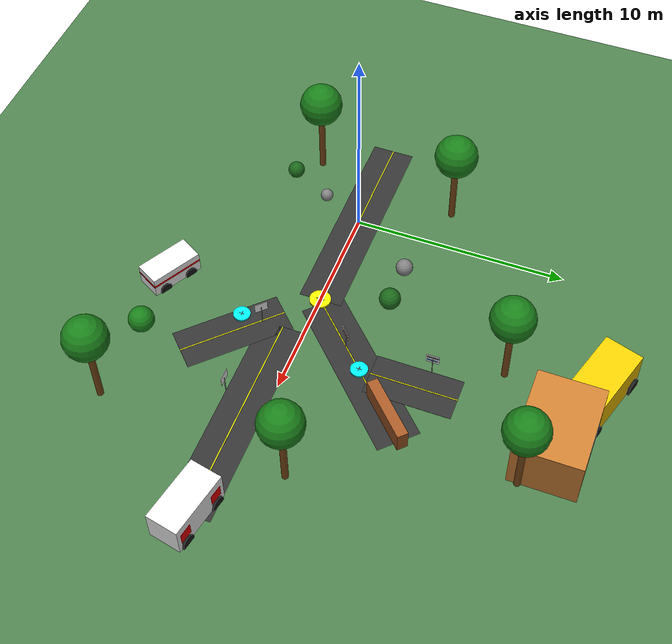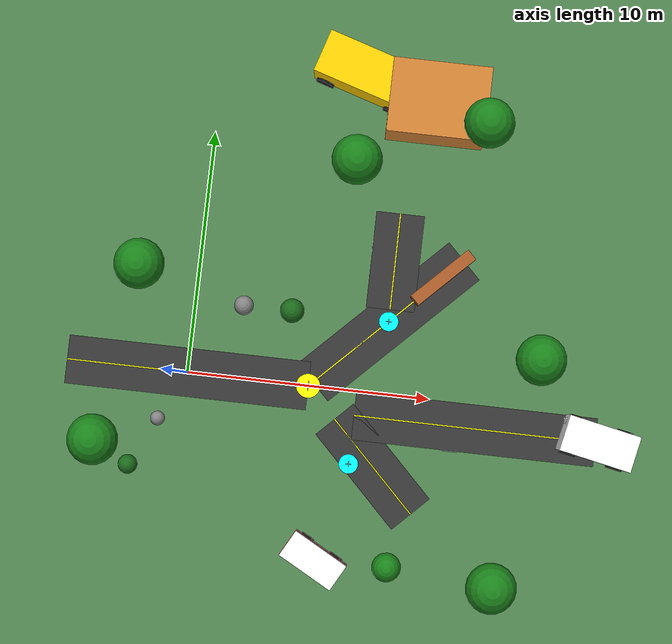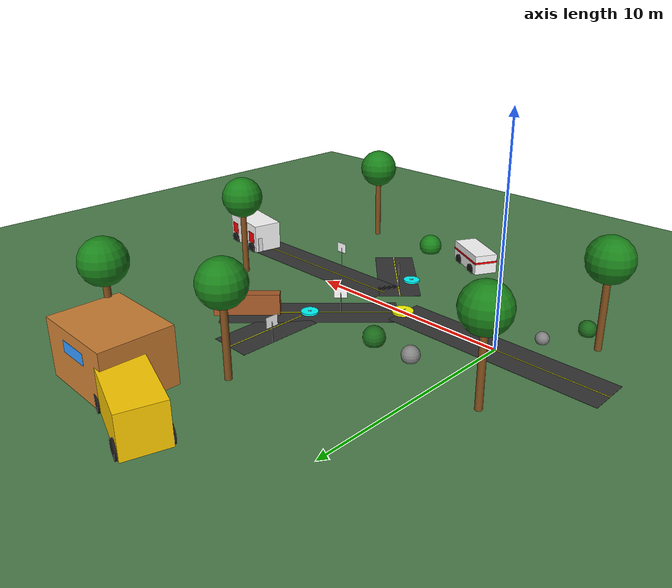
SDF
<sdf version="1.7">
 <world name="ethical_dilemma_world">
  <physics type="ode">
   <max_step_size>0.001</max_step_size>
   <real_time_factor>1</real_time_factor>
   <real_time_update_rate>1000</real_time_update_rate>
  </physics>
  <light type="directional" name="sun">
   <pose>0 0 10 0 0 0</pose>
   <diffuse>0.8 0.8 0.8 1</diffuse>
   <specular>0.2 0.2 0.2 1</specular>
   <direction>-0.5 0.1 -0.9</direction>
  </light>
  <light type="directional" name="ambient">
   <cast_shadows>false</cast_shadows>
   <pose>0 0 10 0 0 0</pose>
   <diffuse>0.3 0.3 0.3 1</diffuse>
   <specular>0.1 0.1 0.1 1</specular>
   <direction>0 0 -1</direction>
  </light>
  <scene><ambient>0.4 0.4 0.4 1</ambient><background>0.7 0.8 0.9 1</background><shadows>true</shadows></scene>
  <model name="ground_plane">
   <static>true</static>
   <link name="link">
    <collision name="collision">
     <geometry><plane><normal>0 0 1</normal><size>100 100</size></plane></geometry>
     <surface><friction><ode><mu>100</mu><mu2>50</mu2></ode></friction></surface>
    </collision>
    <visual name="visual">
     <geometry><plane><normal>0 0 1</normal><size>100 100</size></plane></geometry>
     <material>
      <ambient>0.3 0.5 0.3 1</ambient>
      <diffuse>0.3 0.5 0.3 1</diffuse>
      <specular>0 0 0 1</specular>
      <emissive>0 0 0 1</emissive>
     </material>
    </visual>
   </link>
  </model>
  <model name="main_road">
   <static>true</static>
   <link name="link">
    <collision name="collision"><geometry><box><size>10.0 2.0 0.01</size></box></geometry></collision>
    <visual name="visual">
     <geometry><box><size>10.0 2.0 0.01</size></box></geometry>
     <material>
      <ambient>0.2 0.2 0.2 1</ambient>
      <diffuse>0.2 0.2 0.2 1</diffuse>
      <specular>0.05 0.05 0.05 1</specular>
     </material>
    </visual>
    <visual name="center_line">
     <geometry><box><size>10.0 0.05 0.015</size></box></geometry>
     <material>
      <ambient>1.0 1.0 0.0 1</ambient>
      <diffuse>1.0 1.0 0.0 1</diffuse>
      <specular>0.1 0.1 0.1 1</specular>
     </material>
    </visual>
   </link>
   <pose>0 0 0.005 0 0 0</pose>
  </model>
  <model name="road_fork_1">
   <static>true</static>
   <link name="link">
    <collision name="collision"><geometry><box><size>8.0 2.0 0.01</size></box></geometry></collision>
    <visual name="visual">
     <geometry><box><size>8.0 2.0 0.01</size></box></geometry>
     <material>
      <ambient>0.2 0.2 0.2 1</ambient>
      <diffuse>0.2 0.2 0.2 1</diffuse>
      <specular>0.05 0.05 0.05 1</specular>
     </material>
    </visual>
    <visual name="center_line">
     <pose>0 0 0.005 0 0 0</pose>
     <geometry><box><size>8.0 0.05 0.015</size></box></geometry>
     <material>
      <ambient>1.0 1.0 0.0 1</ambient>
      <diffuse>1.0 1.0 0.0 1</diffuse>
      <specular>0.1 0.1 0.1 1</specular>
     </material>
    </visual>
   </link>
   <pose>8.0 3.0 0.005 0 0 0.785398</pose>
  </model>
  <model name="road_fork_2">
   <static>true</static>
   <link name="link">
    <collision name="collision"><geometry><box><size>5.0 2.0 0.01</size></box></geometry></collision>
    <visual name="visual">
     <geometry><box><size>5.0 2.0 0.01</size></box></geometry>
     <material>
      <ambient>0.2 0.2 0.2 1</ambient>
      <diffuse>0.2 0.2 0.2 1</diffuse>
      <specular>0.05 0.05 0.05 1</specular>
     </material>
    </visual>
    <visual name="center_line">
     <pose>0 0 0.005 0 0 0</pose>
     <geometry><box><size>5.0 0.05 0.015</size></box></geometry>
     <material>
      <ambient>1.0 1.0 0.0 1</ambient>
      <diffuse>1.0 1.0 0.0 1</diffuse>
      <specular>0.1 0.1 0.1 1</specular>
     </material>
    </visual>
   </link>
   <pose>8.0 -3.0 0.005 0 0 -0.785398</pose>
  </model>
  <model name="road_fork_area4">
   <static>true</static>
   <link name="link">
    <collision name="collision"><geometry><box><size>4.0 2.0 0.01</size></box></geometry></collision>
    <visual name="visual">
     <geometry><box><size>4.0 2.0 0.01</size></box></geometry>
     <material>
      <ambient>0.2 0.2 0.2 1</ambient>
      <diffuse>0.2 0.2 0.2 1</diffuse>
      <specular>0.05 0.05 0.05 1</specular>
     </material>
    </visual>
    <visual name="center_line">
     <pose>0 0 0.005 0 0 0</pose>
     <geometry><box><size>4.0 0.05 0.015</size></box></geometry>
     <material>
      <ambient>1.0 1.0 0.0 1</ambient>
      <diffuse>1.0 1.0 0.0 1</diffuse>
      <specular>0.1 0.1 0.1 1</specular>
     </material>
    </visual>
   </link>
   <pose>8.0 5.5 0.005 0 0 1.5708</pose>
  </model>
  <model name="road_fork_area3">
   <static>true</static>
   <link name="link">
    <collision name="collision"><geometry><box><size>10.0 2.0 0.01</size></box></geometry></collision>
    <visual name="visual">
     <geometry><box><size>10.0 2.0 0.01</size></box></geometry>
     <material>
      <ambient>0.2 0.2 0.2 1</ambient>
      <diffuse>0.2 0.2 0.2 1</diffuse>
      <specular>0.05 0.05 0.05 1</specular>
     </material>
    </visual>
    <visual name="center_line">
     <pose>0 0 0.005 0 0 0</pose>
     <geometry><box><size>10.0 0.05 0.015</size></box></geometry>
     <material>
      <ambient>1.0 1.0 0.0 1</ambient>
      <diffuse>1.0 1.0 0.0 1</diffuse>
      <specular>0.1 0.1 0.1 1</specular>
     </material>
    </visual>
   </link>
   <pose>12.0 -1.0 0.005 0 0 0</pose>
  </model>
  <model name="decision_point">
   <static>true</static>
   <link name="link">
    <collision name="collision">
     <geometry><cylinder><radius>0.5</radius><length>0.1</length></cylinder></geometry>
    </collision>
    <visual name="visual">
     <geometry><cylinder><radius>0.5</radius><length>0.1</length></cylinder></geometry>
     <material>
      <ambient>1.0 1.0 0.0 1</ambient>
      <diffuse>1.0 1.0 0.0 1</diffuse>
      <specular>0.1 0.1 0.1 1</specular>
      <emissive>0.1 0.1 0 1</emissive>
     </material>
    </visual>
    <visual name="symbol">
     <pose>0 0 0.051 0 0 0</pose>
     <geometry><box><size>0.4 0.025 0.001</size></box></geometry>
     <material><ambient>0 0 0 1</ambient><diffuse>0 0 0 1</diffuse></material>
    </visual>
    <visual name="symbol_2">
     <pose>0 0 0.051 0 0 1.5708</pose>
     <geometry><box><size>0.4 0.025 0.001</size></box></geometry>
     <material><ambient>0 0 0 1</ambient><diffuse>0 0 0 1</diffuse></material>
    </visual>
   </link>
   <pose>5.0 0 0.05 0 0 0</pose>
  </model>
  <model name="secondary_decision_point_area1">
   <static>true</static>
   <link name="link">
    <collision name="collision">
     <geometry><cylinder><radius>0.4</radius><length>0.1</length></cylinder></geometry>
    </collision>
    <visual name="visual">
     <geometry><cylinder><radius>0.4</radius><length>0.1</length></cylinder></geometry>
     <material>
      <ambient>0.0 1.0 1.0 1</ambient>
      <diffuse>0.0 1.0 1.0 1</diffuse>
      <specular>0.1 0.1 0.1 1</specular>
      <emissive>0.0 0.1 0.1 1</emissive>
     </material>
    </visual>
    <visual name="symbol">
     <pose>0 0 0.051 0 0 0</pose>
     <geometry><box><size>0.25 0.025 0.001</size></box></geometry>
     <material><ambient>0 0 0 1</ambient><diffuse>0 0 0 1</diffuse></material>
    </visual>
    <visual name="symbol_2">
     <pose>0 0 0.051 0 0 1.5708</pose>
     <geometry><box><size>0.25 0.025 0.001</size></box></geometry>
     <material><ambient>0 0 0 1</ambient><diffuse>0 0 0 1</diffuse></material>
    </visual>
   </link>
   <pose>8.0 3.0 0.05 0 0 0</pose>
  </model>
  <model name="secondary_decision_point_area2">
   <static>true</static>
   <link name="link">
    <collision name="collision">
     <geometry><cylinder><radius>0.4</radius><length>0.1</length></cylinder></geometry>
    </collision>
    <visual name="visual">
     <geometry><cylinder><radius>0.4</radius><length>0.1</length></cylinder></geometry>
     <material>
      <ambient>0.0 1.0 1.0 1</ambient>
      <diffuse>0.0 1.0 1.0 1</diffuse>
      <specular>0.1 0.1 0.1 1</specular>
      <emissive>0.0 0.1 0.1 1</emissive>
     </material>
    </visual>
    <visual name="symbol">
     <pose>0 0 0.051 0 0 0</pose>
     <geometry><box><size>0.25 0.025 0.001</size></box></geometry>
     <material><ambient>0 0 0 1</ambient><diffuse>0 0 0 1</diffuse></material>
    </visual>
    <visual name="symbol_2">
     <pose>0 0 0.051 0 0 1.5708</pose>
     <geometry><box><size>0.25 0.025 0.001</size></box></geometry>
     <material><ambient>0 0 0 1</ambient><diffuse>0 0 0 1</diffuse></material>
    </visual>
   </link>
   <pose>7.0 -3.0 0.05 0 0 0</pose>
  </model>
  <model name="medical_equipment">
   <static>true</static>
   <link name="link">
    <collision name="collision"><geometry><box><size>0.8 0.8 0.8</size></box></geometry></collision>
    <visual name="visual">
     <geometry><box><size>0.8 0.8 0.8</size></box></geometry>
     <material><ambient>1 1 1 1</ambient><diffuse>1 1 1 1</diffuse></material>
    </visual>
    <visual name="cross">
     <pose>0 0.401 0 0 0 0</pose>
     <geometry><box><size>0.6 0.01 0.6</size></box></geometry>
     <material><ambient>1 0 0 1</ambient><diffuse>1 0 0 1</diffuse></material>
    </visual>
   </link>
   <pose>16.0 -0.5 0.4 0 0 0</pose>
  </model>
  <model name="school_building">
   <static>true</static>
   <link name="link">
    <collision name="collision"><geometry><box><size>4.0 3.0 2.5</size></box></geometry></collision>
    <visual name="visual">
     <geometry><box><size>4.0 3.0 2.5</size></box></geometry>
     <material><ambient>0.8 0.5 0.2 1</ambient><diffuse>0.8 0.5 0.2 1</diffuse></material>
    </visual>
    <visual name="sign">
     <pose>0 1.501 0.5 0 0 0</pose>
     <geometry><box><size>1.5 0.01 0.5</size></box></geometry>
     <material><ambient>0.2 0.6 1.0 1</ambient><diffuse>0.2 0.6 1.0 1</diffuse></material>
    </visual>
   </link>
   <pose>9.0 12.0 1.25 0 0 0</pose>
  </model>
  <model name="area1_sign">
   <static>true</static>
   <link name="link">
    <visual name="visual">
     <geometry><box><size>0.6 0.01 0.5</size></box></geometry>
     <material>
      <ambient>1.0 1.0 1.0 1</ambient>
      <diffuse>1.0 1.0 1.0 1</diffuse>
      <specular>0.1 0.1 0.1 1</specular>
     </material>
    </visual>
    <visual name="text">
     <pose>0 -0.006 0.1 0 0 0</pose>
     <geometry><box><size>0.55 0.001 0.1</size></box></geometry>
     <material><ambient>0.1 0.1 0.1 1</ambient><diffuse>0.1 0.1 0.1 1</diffuse></material>
    </visual>
    <visual name="text2">
     <pose>0 -0.006 -0.1 0 0 0</pose>
     <geometry><box><size>0.5 0.001 0.08</size></box></geometry>
     <material><ambient>0.8 0.1 0.1 1</ambient><diffuse>0.8 0.1 0.1 1</diffuse></material>
    </visual>
    <collision name="collision"><geometry><box><size>0.6 0.01 0.5</size></box></geometry></collision>
   </link>
   <pose>7.0 2.0 1.0 0 0 0.785398</pose>
  </model>
  <model name="area2_sign">
   <static>true</static>
   <link name="link">
    <visual name="visual">
     <geometry><box><size>0.6 0.01 0.5</size></box></geometry>
     <material>
      <ambient>1.0 1.0 1.0 1</ambient>
      <diffuse>1.0 1.0 1.0 1</diffuse>
      <specular>0.1 0.1 0.1 1</specular>
     </material>
    </visual>
    <visual name="text">
     <pose>0 -0.006 0.1 0 0 0</pose>
     <geometry><box><size>0.55 0.001 0.1</size></box></geometry>
     <material><ambient>0.1 0.1 0.1 1</ambient><diffuse>0.1 0.1 0.1 1</diffuse></material>
    </visual>
    <visual name="text2">
     <pose>0 -0.006 -0.1 0 0 0</pose>
     <geometry><box><size>0.5 0.001 0.08</size></box></geometry>
     <material><ambient>0.1 0.6 0.1 1</ambient><diffuse>0.1 0.6 0.1 1</diffuse></material>
    </visual>
    <collision name="collision"><geometry><box><size>0.6 0.01 0.5</size></box></geometry></collision>
   </link>
   <pose>7.0 -2.0 1.0 0 0 -0.785398</pose>
  </model>
  <model name="area3_sign">
   <static>true</static>
   <link name="link">
    <visual name="visual">
     <geometry><box><size>0.6 0.01 0.5</size></box></geometry>
     <material>
      <ambient>1.0 1.0 1.0 1</ambient>
      <diffuse>1.0 1.0 1.0 1</diffuse>
      <specular>0.1 0.1 0.1 1</specular>
     </material>
    </visual>
    <visual name="text">
     <pose>0 -0.006 0.1 0 0 0</pose>
     <geometry><box><size>0.55 0.001 0.1</size></box></geometry>
     <material><ambient>0.1 0.1 0.1 1</ambient><diffuse>0.1 0.1 0.1 1</diffuse></material>
    </visual>
    <visual name="text2">
     <pose>0 -0.006 -0.1 0 0 0</pose>
     <geometry><box><size>0.5 0.001 0.08</size></box></geometry>
     <material><ambient>0.8 0.1 0.1 1</ambient><diffuse>0.8 0.1 0.1 1</diffuse></material>
    </visual>
    <collision name="collision"><geometry><box><size>0.6 0.01 0.5</size></box></geometry></collision>
   </link>
   <pose>11.0 -2.0 1.0 0 0 0</pose>
  </model>
  <model name="area4_sign">
   <static>true</static>
   <link name="link">
    <visual name="visual">
     <geometry><box><size>0.6 0.01 0.5</size></box></geometry>
     <material>
      <ambient>1.0 1.0 1.0 1</ambient>
      <diffuse>1.0 1.0 1.0 1</diffuse>
      <specular>0.1 0.1 0.1 1</specular>
     </material>
    </visual>
    <visual name="text">
     <pose>0 -0.006 0.1 0 0 0</pose>
     <geometry><box><size>0.55 0.001 0.1</size></box></geometry>
     <material><ambient>0.1 0.1 0.1 1</ambient><diffuse>0.1 0.1 0.1 1</diffuse></material>
    </visual>
    <visual name="text2">
     <pose>0 -0.006 -0.1 0 0 0</pose>
     <geometry><box><size>0.5 0.001 0.08</size></box></geometry>
     <material><ambient>0.2 0.5 0.8 1</ambient><diffuse>0.2 0.5 0.8 1</diffuse></material>
    </visual>
    <collision name="collision"><geometry><box><size>0.6 0.01 0.5</size></box></geometry></collision>
   </link>
   <pose>7.0 6.0 1.0 0 0 1.5708</pose>
  </model>
  <model name="area1_sign_pole">
   <static>true</static>
   <link name="link">
    <visual name="visual">
     <geometry><cylinder><radius>0.02</radius><length>1.0</length></cylinder></geometry>
     <material>
      <ambient>0.7 0.7 0.7 1</ambient>
      <diffuse>0.7 0.7 0.7 1</diffuse>
      <specular>0.2 0.2 0.2 1</specular>
     </material>
    </visual>
    <collision name="collision">
     <geometry><cylinder><radius>0.02</radius><length>1.0</length></cylinder></geometry>
    </collision>
   </link>
   <pose>7.0 2.0 0.5 0 0 0</pose>
  </model>
  <model name="area2_sign_pole">
   <static>true</static>
   <link name="link">
    <visual name="visual">
     <geometry><cylinder><radius>0.02</radius><length>1.0</length></cylinder></geometry>
     <material>
      <ambient>0.7 0.7 0.7 1</ambient>
      <diffuse>0.7 0.7 0.7 1</diffuse>
      <specular>0.2 0.2 0.2 1</specular>
     </material>
    </visual>
    <collision name="collision">
     <geometry><cylinder><radius>0.02</radius><length>1.0</length></cylinder></geometry>
    </collision>
   </link>
   <pose>7.0 -2.0 0.5 0 0 0</pose>
  </model>
  <model name="area3_sign_pole">
   <static>true</static>
   <link name="link">
    <visual name="visual">
     <geometry><cylinder><radius>0.02</radius><length>1.0</length></cylinder></geometry>
     <material>
      <ambient>0.7 0.7 0.7 1</ambient>
      <diffuse>0.7 0.7 0.7 1</diffuse>
      <specular>0.2 0.2 0.2 1</specular>
     </material>
    </visual>
    <collision name="collision">
     <geometry><cylinder><radius>0.02</radius><length>1.0</length></cylinder></geometry>
    </collision>
   </link>
   <pose>11.0 -2.0 0.5 0 0 0</pose>
  </model>
  <model name="area4_sign_pole">
   <static>true</static>
   <link name="link">
    <visual name="visual">
     <geometry><cylinder><radius>0.02</radius><length>1.0</length></cylinder></geometry>
     <material>
      <ambient>0.7 0.7 0.7 1</ambient>
      <diffuse>0.7 0.7 0.7 1</diffuse>
      <specular>0.2 0.2 0.2 1</specular>
     </material>
    </visual>
    <collision name="collision">
     <geometry><cylinder><radius>0.02</radius><length>1.0</length></cylinder></geometry>
    </collision>
   </link>
   <pose>7.0 6.0 0.5 0 0 0</pose>
  </model>
  <model name="area1_obstacle">
   <static>true</static>
   <link name="link">
    <collision name="collision"><geometry><box><size>3.0 0.5 1.0</size></box></geometry></collision>
    <visual name="visual">
     <geometry><box><size>3.0 0.5 1.0</size></box></geometry>
     <material>
      <ambient>0.65 0.35 0.15 1</ambient>
      <diffuse>0.65 0.35 0.15 1</diffuse>
      <specular>0.1 0.1 0.1 1</specular>
     </material>
    </visual>
   </link>
   <pose>10.0 5.0 0.5 0 0 0.785398</pose>
  </model>
  <model name="tree1">
   <static>true</static>
   <link name="link">
    <collision name="collision_trunk">
     <pose>0 0 1.5 0 0 0</pose>
     <geometry><cylinder><radius>0.15</radius><length>3.0</length></cylinder></geometry>
    </collision>
    <visual name="trunk">
     <pose>0 0 1.5 0 0 0</pose>
     <geometry><cylinder><radius>0.15</radius><length>3.0</length></cylinder></geometry>
     <material><ambient>0.5 0.3 0.1 1</ambient><diffuse>0.5 0.3 0.1 1</diffuse></material>
    </visual>
    <collision name="collision_foliage">
     <pose>0 0 4 0 0 0</pose>
     <geometry><sphere><radius>1.0</radius></sphere></geometry>
    </collision>
    <visual name="foliage">
     <pose>0 0 4 0 0 0</pose>
     <geometry><sphere><radius>1.0</radius></sphere></geometry>
     <material><ambient>0.1 0.5 0.1 1</ambient><diffuse>0.1 0.5 0.1 1</diffuse></material>
    </visual>
   </link>
   <pose>-2 4 0 0 0 0</pose>
  </model>
  <model name="tree2">
   <static>true</static>
   <link name="link">
    <collision name="collision_trunk">
     <pose>0 0 1.5 0 0 0</pose>
     <geometry><cylinder><radius>0.15</radius><length>3.0</length></cylinder></geometry>
    </collision>
    <visual name="trunk">
     <pose>0 0 1.5 0 0 0</pose>
     <geometry><cylinder><radius>0.15</radius><length>3.0</length></cylinder></geometry>
     <material><ambient>0.5 0.3 0.1 1</ambient><diffuse>0.5 0.3 0.1 1</diffuse></material>
    </visual>
    <collision name="collision_foliage">
     <pose>0 0 4 0 0 0</pose>
     <geometry><sphere><radius>1.0</radius></sphere></geometry>
    </collision>
    <visual name="foliage">
     <pose>0 0 4 0 0 0</pose>
     <geometry><sphere><radius>1.0</radius></sphere></geometry>
     <material><ambient>0.1 0.5 0.1 1</ambient><diffuse>0.1 0.5 0.1 1</diffuse></material>
    </visual>
   </link>
   <pose>-3 -3 0 0 0 0</pose>
  </model>
  <model name="tree3">
   <static>true</static>
   <link name="link">
    <collision name="collision_trunk">
     <pose>0 0 1.5 0 0 0</pose>
     <geometry><cylinder><radius>0.15</radius><length>3.0</length></cylinder></geometry>
    </collision>
    <visual name="trunk">
     <pose>0 0 1.5 0 0 0</pose>
     <geometry><cylinder><radius>0.15</radius><length>3.0</length></cylinder></geometry>
     <material><ambient>0.5 0.3 0.1 1</ambient><diffuse>0.5 0.3 0.1 1</diffuse></material>
    </visual>
    <collision name="collision_foliage">
     <pose>0 0 4 0 0 0</pose>
     <geometry><sphere><radius>1.0</radius></sphere></geometry>
    </collision>
    <visual name="foliage">
     <pose>0 0 4 0 0 0</pose>
     <geometry><sphere><radius>1.0</radius></sphere></geometry>
     <material><ambient>0.1 0.5 0.1 1</ambient><diffuse>0.1 0.5 0.1 1</diffuse></material>
    </visual>
   </link>
   <pose>14 2 0 0 0 0</pose>
  </model>
  <model name="tree4">
   <static>true</static>
   <link name="link">
    <collision name="collision_trunk">
     <pose>0 0 1.5 0 0 0</pose>
     <geometry><cylinder><radius>0.15</radius><length>3.0</length></cylinder></geometry>
    </collision>
    <visual name="trunk">
     <pose>0 0 1.5 0 0 0</pose>
     <geometry><cylinder><radius>0.15</radius><length>3.0</length></cylinder></geometry>
     <material><ambient>0.5 0.3 0.1 1</ambient><diffuse>0.5 0.3 0.1 1</diffuse></material>
    </visual>
    <collision name="collision_foliage">
     <pose>0 0 4 0 0 0</pose>
     <geometry><sphere><radius>1.0</radius></sphere></geometry>
    </collision>
    <visual name="foliage">
     <pose>0 0 4 0 0 0</pose>
     <geometry><sphere><radius>1.0</radius></sphere></geometry>
     <material><ambient>0.1 0.5 0.1 1</ambient><diffuse>0.1 0.5 0.1 1</diffuse></material>
    </visual>
   </link>
   <pose>13 -7 0 0 0 0</pose>
  </model>
  <model name="tree5">
   <static>true</static>
   <link name="link">
    <collision name="collision_trunk">
     <pose>0 0 1.5 0 0 0</pose>
     <geometry><cylinder><radius>0.15</radius><length>3.0</length></cylinder></geometry>
    </collision>
    <visual name="trunk">
     <pose>0 0 1.5 0 0 0</pose>
     <geometry><cylinder><radius>0.15</radius><length>3.0</length></cylinder></geometry>
     <material><ambient>0.5 0.3 0.1 1</ambient><diffuse>0.5 0.3 0.1 1</diffuse></material>
    </visual>
    <collision name="collision_foliage">
     <pose>0 0 4 0 0 0</pose>
     <geometry><sphere><radius>1.0</radius></sphere></geometry>
    </collision>
    <visual name="foliage">
     <pose>0 0 4 0 0 0</pose>
     <geometry><sphere><radius>1.0</radius></sphere></geometry>
     <material><ambient>0.1 0.5 0.1 1</ambient><diffuse>0.1 0.5 0.1 1</diffuse></material>
    </visual>
   </link>
   <pose>6 9 0 0 0 0</pose>
  </model>
  <model name="tree6">
   <static>true</static>
   <link name="link">
    <collision name="collision_trunk">
     <pose>0 0 1.5 0 0 0</pose>
     <geometry><cylinder><radius>0.15</radius><length>3.0</length></cylinder></geometry>
    </collision>
    <visual name="trunk">
     <pose>0 0 1.5 0 0 0</pose>
     <geometry><cylinder><radius>0.15</radius><length>3.0</length></cylinder></geometry>
     <material><ambient>0.5 0.3 0.1 1</ambient><diffuse>0.5 0.3 0.1 1</diffuse></material>
    </visual>
    <collision name="collision_foliage">
     <pose>0 0 4 0 0 0</pose>
     <geometry><sphere><radius>1.0</radius></sphere></geometry>
    </collision>
    <visual name="foliage">
     <pose>0 0 4 0 0 0</pose>
     <geometry><sphere><radius>1.0</radius></sphere></geometry>
     <material><ambient>0.1 0.5 0.1 1</ambient><diffuse>0.1 0.5 0.1 1</diffuse></material>
    </visual>
   </link>
   <pose>11 11 0 0 0 0</pose>
  </model>
  <model name="emergency_vehicle">
   <static>true</static>
   <link name="link">
    <collision name="collision"><geometry><box><size>2.5 1.2 1.0</size></box></geometry></collision>
    <visual name="body">
     <geometry><box><size>2.5 1.2 1.0</size></box></geometry>
     <material><ambient>1.0 1.0 1.0 1</ambient><diffuse>1.0 1.0 1.0 1</diffuse></material>
    </visual>
    <visual name="stripe">
     <pose>0 0 0.1 0 0 0</pose>
     <geometry><box><size>2.52 1.22 0.1</size></box></geometry>
     <material><ambient>1.0 0.0 0.0 1</ambient><diffuse>1.0 0.0 0.0 1</diffuse></material>
    </visual>
    <visual name="wheel1">
     <pose>-0.7 0.6 -0.4 1.57 0 0</pose>
     <geometry><cylinder><radius>0.3</radius><length>0.1</length></cylinder></geometry>
     <material><ambient>0.1 0.1 0.1 1</ambient><diffuse>0.1 0.1 0.1 1</diffuse></material>
    </visual>
    <visual name="wheel2">
     <pose>0.7 0.6 -0.4 1.57 0 0</pose>
     <geometry><cylinder><radius>0.3</radius><length>0.1</length></cylinder></geometry>
     <material><ambient>0.1 0.1 0.1 1</ambient><diffuse>0.1 0.1 0.1 1</diffuse></material>
    </visual>
    <visual name="wheel3">
     <pose>-0.7 -0.6 -0.4 1.57 0 0</pose>
     <geometry><cylinder><radius>0.3</radius><length>0.1</length></cylinder></geometry>
     <material><ambient>0.1 0.1 0.1 1</ambient><diffuse>0.1 0.1 0.1 1</diffuse></material>
    </visual>
    <visual name="wheel4">
     <pose>0.7 -0.6 -0.4 1.57 0 0</pose>
     <geometry><cylinder><radius>0.3</radius><length>0.1</length></cylinder></geometry>
     <material><ambient>0.1 0.1 0.1 1</ambient><diffuse>0.1 0.1 0.1 1</diffuse></material>
    </visual>
   </link>
   <pose>6 -7 0.5 0 0 -0.5</pose>
  </model>
  <model name="hospital_vehicle">
   <static>true</static>
   <link name="link">
    <collision name="collision"><geometry><box><size>3.0 1.5 1.5</size></box></geometry></collision>
    <visual name="body">
     <geometry><box><size>3.0 1.5 1.5</size></box></geometry>
     <material><ambient>1.0 1.0 1.0 1</ambient><diffuse>1.0 1.0 1.0 1</diffuse></material>
    </visual>
    <visual name="cross1">
     <pose>-1.0 0.76 0 0 0 0</pose>
     <geometry><box><size>0.6 0.01 0.6</size></box></geometry>
     <material><ambient>1.0 0.0 0.0 1</ambient><diffuse>1.0 0.0 0.0 1</diffuse></material>
    </visual>
    <visual name="cross2">
     <pose>1.0 0.76 0 0 0 0</pose>
     <geometry><box><size>0.6 0.01 0.6</size></box></geometry>
     <material><ambient>1.0 0.0 0.0 1</ambient><diffuse>1.0 0.0 0.0 1</diffuse></material>
    </visual>
    <visual name="wheel1">
     <pose>-1.0 0.75 -0.65 1.57 0 0</pose>
     <geometry><cylinder><radius>0.35</radius><length>0.15</length></cylinder></geometry>
     <material><ambient>0.1 0.1 0.1 1</ambient><diffuse>0.1 0.1 0.1 1</diffuse></material>
    </visual>
    <visual name="wheel2">
     <pose>1.0 0.75 -0.65 1.57 0 0</pose>
     <geometry><cylinder><radius>0.35</radius><length>0.15</length></cylinder></geometry>
     <material><ambient>0.1 0.1 0.1 1</ambient><diffuse>0.1 0.1 0.1 1</diffuse></material>
    </visual>
    <visual name="wheel3">
     <pose>-1.0 -0.75 -0.65 1.57 0 0</pose>
     <geometry><cylinder><radius>0.35</radius><length>0.15</length></cylinder></geometry>
     <material><ambient>0.1 0.1 0.1 1</ambient><diffuse>0.1 0.1 0.1 1</diffuse></material>
    </visual>
    <visual name="wheel4">
     <pose>1.0 -0.75 -0.65 1.57 0 0</pose>
     <geometry><cylinder><radius>0.35</radius><length>0.15</length></cylinder></geometry>
     <material><ambient>0.1 0.1 0.1 1</ambient><diffuse>0.1 0.1 0.1 1</diffuse></material>
    </visual>
   </link>
   <pose>17 -1 0.75 0 0 -0.2</pose>
  </model>
  <model name="school_bus">
   <static>true</static>
   <link name="link">
    <collision name="collision"><geometry><box><size>4.0 1.8 1.8</size></box></geometry></collision>
    <visual name="body">
     <geometry><box><size>4.0 1.8 1.8</size></box></geometry>
     <material><ambient>1.0 0.8 0.0 1</ambient><diffuse>1.0 0.8 0.0 1</diffuse></material>
    </visual>
    <visual name="windows">
     <pose>0 0 0.3 0 0 0</pose>
     <geometry><box><size>3.8 1.6 0.6</size></box></geometry>
     <material><ambient>0.1 0.3 0.5 0.6</ambient><diffuse>0.1 0.3 0.5 0.6</diffuse></material>
    </visual>
    <visual name="wheel1">
     <pose>-1.5 0.9 -0.7 1.57 0 0</pose>
     <geometry><cylinder><radius>0.4</radius><length>0.2</length></cylinder></geometry>
     <material><ambient>0.1 0.1 0.1 1</ambient><diffuse>0.1 0.1 0.1 1</diffuse></material>
    </visual>
    <visual name="wheel2">
     <pose>1.5 0.9 -0.7 1.57 0 0</pose>
     <geometry><cylinder><radius>0.4</radius><length>0.2</length></cylinder></geometry>
     <material><ambient>0.1 0.1 0.1 1</ambient><diffuse>0.1 0.1 0.1 1</diffuse></material>
    </visual>
    <visual name="wheel3">
     <pose>-1.5 -0.9 -0.7 1.57 0 0</pose>
     <geometry><cylinder><radius>0.4</radius><length>0.2</length></cylinder></geometry>
     <material><ambient>0.1 0.1 0.1 1</ambient><diffuse>0.1 0.1 0.1 1</diffuse></material>
    </visual>
    <visual name="wheel4">
     <pose>1.5 -0.9 -0.7 1.57 0 0</pose>
     <geometry><cylinder><radius>0.4</radius><length>0.2</length></cylinder></geometry>
     <material><ambient>0.1 0.1 0.1 1</ambient><diffuse>0.1 0.1 0.1 1</diffuse></material>
    </visual>
   </link>
   <pose>6 13 0.9 0 0 -0.3</pose>
  </model>
  <model name="rock1">
   <static>true</static>
   <link name="link">
    <collision name="collision"><geometry><sphere><radius>0.4</radius></sphere></geometry></collision>
    <visual name="visual">
     <geometry><sphere><radius>0.4</radius></sphere></geometry>
     <material><ambient>0.5 0.5 0.5 1</ambient><diffuse>0.5 0.5 0.5 1</diffuse></material>
    </visual>
   </link>
   <pose>2 3 0.2 0 0 0</pose>
  </model>
  <model name="rock2">
   <static>true</static>
   <link name="link">
    <collision name="collision"><geometry><sphere><radius>0.3</radius></sphere></geometry></collision>
    <visual name="visual">
     <geometry><sphere><radius>0.3</radius></sphere></geometry>
     <material><ambient>0.5 0.5 0.5 1</ambient><diffuse>0.5 0.5 0.5 1</diffuse></material>
    </visual>
   </link>
   <pose>-1 -2 0.15 0 0 0</pose>
  </model>
  <model name="bush1">
   <static>true</static>
   <link name="link">
    <collision name="collision"><geometry><sphere><radius>0.5</radius></sphere></geometry></collision>
    <visual name="visual">
     <geometry><sphere><radius>0.5</radius></sphere></geometry>
     <material><ambient>0.1 0.4 0.1 1</ambient><diffuse>0.1 0.4 0.1 1</diffuse></material>
    </visual>
   </link>
   <pose>4 3 0.25 0 0 0</pose>
  </model>
  <model name="bush2">
   <static>true</static>
   <link name="link">
    <collision name="collision"><geometry><sphere><radius>0.4</radius></sphere></geometry></collision>
    <visual name="visual">
     <geometry><sphere><radius>0.4</radius></sphere></geometry>
     <material><ambient>0.1 0.4 0.1 1</ambient><diffuse>0.1 0.4 0.1 1</diffuse></material>
    </visual>
   </link>
   <pose>-2 -4 0.2 0 0 0</pose>
  </model>
  <model name="bush3">
   <static>true</static>
   <link name="link">
    <collision name="collision"><geometry><sphere><radius>0.6</radius></sphere></geometry></collision>
    <visual name="visual">
     <geometry><sphere><radius>0.6</radius></sphere></geometry>
     <material><ambient>0.1 0.5 0.1 1</ambient><diffuse>0.1 0.5 0.1 1</diffuse></material>
    </visual>
   </link>
   <pose>9 -7 0.3 0 0 0</pose>
  </model>
 </world>
</sdf>
